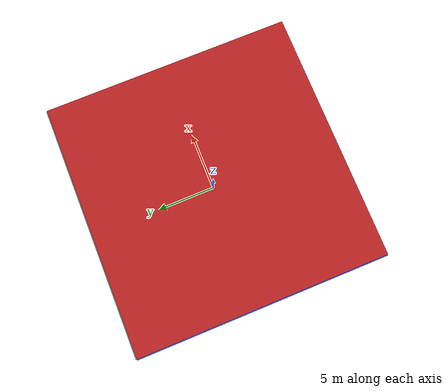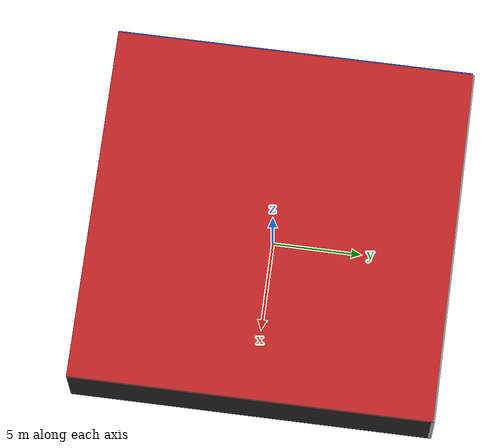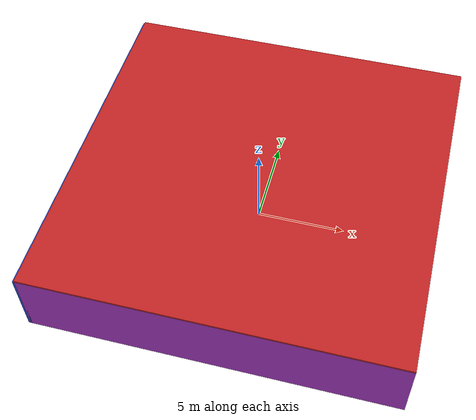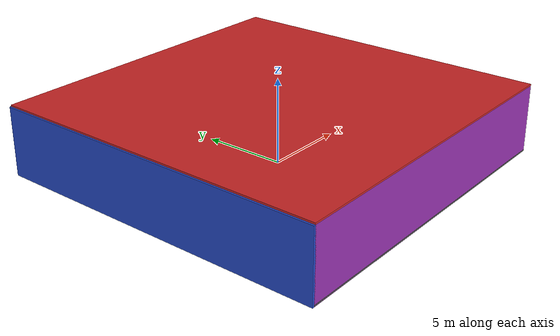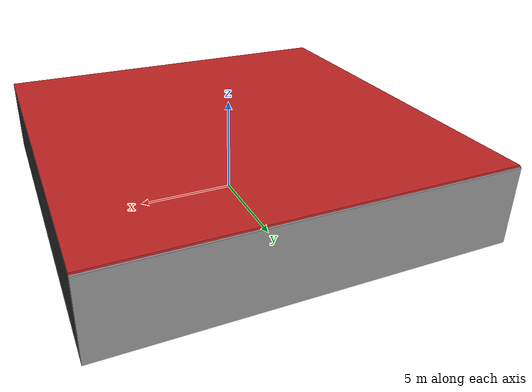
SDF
<sdf version="1.4">
 <world name="default">
  <physics type="ode">
   <max_step_size>0.001</max_step_size>
   <real_time_factor>1</real_time_factor>
   <real_time_update_rate>1000</real_time_update_rate>
   <gravity>0 0 -9.8</gravity>
  </physics>
  <scene><ambient>0.4 0.4 0.4 1</ambient><background>0.7 0.7 0.7 1</background><shadows>1</shadows></scene>
  <model name="Surrounding">
   <static>1</static>
   <link name="Ceiling">
    <collision name="Ceiling_Collision"><geometry><box><size>20 20 0.1</size></box></geometry></collision>
    <visual name="Ceiling_Visual">
     <geometry><box><size>20 20 0.1</size></box></geometry>
     <material>
      <script><uri>file://media/materials/scripts/gazebo.material</uri><name>Gazebo/RedBright</name></script>
     </material>
    </visual>
    <pose>0 0 4.05 0 0 0</pose>
   </link>
   <link name="Wall_South">
    <collision name="Wall_South_Collision">
     <geometry><box><size>20 0 4</size></box></geometry>
     <pose>0 0 2 0 -0 0</pose>
    </collision>
    <visual name="Wall_South_Visual">
     <pose>0 0 2 0 -0 0</pose>
     <geometry><box><size>20 0 4</size></box></geometry>
     <material>
      <script><uri>file://media/materials/scripts/gazebo.material</uri><name>Gazebo/PurpleGlow</name></script>
     </material>
    </visual>
    <velocity_decay><linear>0</linear><angular>0</angular></velocity_decay>
    <pose>0 -10 0 0 -0 0</pose>
   </link>
   <link name="Wall_East">
    <collision name="Wall_21_Collision">
     <geometry><box><size>20 0 4</size></box></geometry>
     <pose>0 0 2 0 -0 0</pose>
    </collision>
    <visual name="Wall_21_Visual">
     <pose>0 0 2 0 -0 0</pose>
     <geometry><box><size>20 0 4</size></box></geometry>
     <material>
      <script><uri>file://media/materials/scripts/gazebo.material</uri><name>Gazebo/FlatBlack</name></script>
     </material>
    </visual>
    <velocity_decay><linear>0</linear><angular>0</angular></velocity_decay>
    <pose>10 0 0 0 -0 1.5708</pose>
   </link>
   <link name="Wall_North">
    <collision name="Wall_22_Collision">
     <geometry><box><size>20 0.2 4</size></box></geometry>
     <pose>0 0 2 0 -0 0</pose>
    </collision>
    <visual name="Wall_22_Visual">
     <pose>0 0 2 0 -0 0</pose>
     <geometry><box><size>20 0.2 4</size></box></geometry>
     <material>
      <script><uri>file://media/materials/scripts/gazebo.material</uri><name>Gazebo/Grey</name></script>
     </material>
    </visual>
    <velocity_decay><linear>0</linear><angular>0</angular></velocity_decay>
    <pose>0 10 0 0 -0 0</pose>
   </link>
   <link name="Wall_West">
    <collision name="Wall_23_Collision">
     <geometry><box><size>20 0.2 4</size></box></geometry>
     <pose>0 0 2 0 -0 0</pose>
    </collision>
    <visual name="Wall_23_Visual">
     <pose>0 0 2 0 -0 0</pose>
     <geometry><box><size>20 0.2 4</size></box></geometry>
     <material>
      <script><uri>file://media/materials/scripts/gazebo.material</uri><name>Gazebo/BlueGlow</name></script>
     </material>
    </visual>
    <velocity_decay><linear>0</linear><angular>0</angular></velocity_decay>
    <pose>-10 0 0 0 0 -1.5708</pose>
   </link>
   <link name="Ground_link">
    <collision name="collision">
     <pose>0 0 .05 0 -0 0</pose>
     <geometry><box><size>20 20 0.1</size></box></geometry>
    </collision>
    <visual name="visual">
     <pose>0 0 .05 0 -0 0</pose>
     <geometry><box><size>20 20 0.1</size></box></geometry>
     <material>
      <script><uri>file://media/materials/scripts/gazebo.material</uri><name>Gazebo/Road</name></script>
     </material>
    </visual>
   </link>
   <static>1</static>
  </model>
  <spherical_coordinates>
   <surface_model>EARTH_WGS84</surface_model>
   <latitude_deg>0</latitude_deg>
   <longitude_deg>0</longitude_deg>
   <elevation>0</elevation>
   <heading_deg>0</heading_deg>
  </spherical_coordinates>
  <light name="lightball_0" type="diffuse">
   <diffuse>0.8 0.8 0.8 1</diffuse>
   <specular>0.2 0.2 0.2 1</specular>
   <attenuation>
    <range>100</range>
    <constant>0.7</constant>
    <linear>0.01</linear>
    <quadratic>0.001</quadratic>
   </attenuation>
   <direction>-0.5 0.1 -0.9</direction>
   <pose>6.79560905787 -8.48742281468 3.79523252433 0 0 0</pose>
  </light>
  <light name="lightball_1" type="diffuse">
   <diffuse>0.8 0.8 0.8 1</diffuse>
   <specular>0.2 0.2 0.2 1</specular>
   <attenuation>
    <range>100</range>
    <constant>0.7</constant>
    <linear>0.01</linear>
    <quadratic>0.001</quadratic>
   </attenuation>
   <direction>-0.5 0.1 -0.9</direction>
   <pose>3.7732711786 0.729863754662 2.588333635 0 0 0</pose>
  </light>
  <light name="lightball_2" type="diffuse">
   <diffuse>0.8 0.8 0.8 1</diffuse>
   <specular>0.2 0.2 0.2 1</specular>
   <attenuation>
    <range>100</range>
    <constant>0.7</constant>
    <linear>0.01</linear>
    <quadratic>0.001</quadratic>
   </attenuation>
   <direction>-0.5 0.1 -0.9</direction>
   <pose>-2.710946766 -0.580024001012 1.30832341921 0 0 0</pose>
  </light>
  <light name="lightball_3" type="diffuse">
   <diffuse>0.8 0.8 0.8 1</diffuse>
   <specular>0.2 0.2 0.2 1</specular>
   <attenuation>
    <range>100</range>
    <constant>0.7</constant>
    <linear>0.01</linear>
    <quadratic>0.001</quadratic>
   </attenuation>
   <direction>-0.5 0.1 -0.9</direction>
   <pose>6.18559519002 0.195162574449 0.903212151935 0 0 0</pose>
  </light>
  <light name="lightball_4" type="diffuse">
   <diffuse>0.8 0.8 0.8 1</diffuse>
   <specular>0.2 0.2 0.2 1</specular>
   <attenuation>
    <range>100</range>
    <constant>0.7</constant>
    <linear>0.01</linear>
    <quadratic>0.001</quadratic>
   </attenuation>
   <direction>-0.5 0.1 -0.9</direction>
   <pose>-1.68126036641 -6.52332758459 3.20277440841 0 0 0</pose>
  </light>
  <light name="lightball_5" type="diffuse">
   <diffuse>0.8 0.8 0.8 1</diffuse>
   <specular>0.2 0.2 0.2 1</specular>
   <attenuation>
    <range>100</range>
    <constant>0.7</constant>
    <linear>0.01</linear>
    <quadratic>0.001</quadratic>
   </attenuation>
   <direction>-0.5 0.1 -0.9</direction>
   <pose>-7.54152427947 -4.13015305436 3.30848023519 0 0 0</pose>
  </light>
  <light name="lightball_6" type="diffuse">
   <diffuse>0.8 0.8 0.8 1</diffuse>
   <specular>0.2 0.2 0.2 1</specular>
   <attenuation>
    <range>100</range>
    <constant>0.7</constant>
    <linear>0.01</linear>
    <quadratic>0.001</quadratic>
   </attenuation>
   <direction>-0.5 0.1 -0.9</direction>
   <pose>5.27142424318 -4.67327267864 0.612235383688 0 0 0</pose>
  </light>
  <include><uri>model://cabinet</uri><pose>-3.86155784982 -4.34671747817 0 0 0 1.46176198513</pose></include>
  <include><uri>model://cabinet</uri><pose>-4.32971804472 1.66071629583 0 0 0 1.27403593632</pose></include>
  <include><uri>model://cabinet</uri><pose>-1.67042236558 -0.516802422729 0 0 0 2.33345110039</pose></include>
  <include><uri>model://cabinet</uri><pose>4.64760162265 8.68450424535 0 0 0 2.60714138456</pose></include>
  <include><uri>model://table</uri><pose>8.32199356611 2.61466053016 0 0 0 0.649430063241</pose></include>
 </world>
</sdf>

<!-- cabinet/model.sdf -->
<sdf version="1.5">
  <model name="cabinet">
    <static>true</static>
    <link name="cabinet_bottom_plate">
      <inertial>
        <pose>0 0 -1 0 0 0</pose>
        <inertia>
          <ixx>2.050000</ixx>
          <ixy>0</ixy>
          <ixz>0</ixz>
          <iyy>2.050000</iyy>
          <iyz>0</iyz>
          <izz>2.050000</izz>
        </inertia>
        <mass>25.000000</mass>
      </inertial>
      <collision name="cabinet_bottom_plate_geom">
        <pose>0 0 0.010000 0 0 0</pose>
        <geometry>
          <box>
            <size>0.450000 0.450000 0.020000</size>
          </box>
        </geometry>
      </collision>
      <visual name="cabinet_bottom_plate_geom_visual">
        <pose>0 0 0.010000 0 0 0</pose>
        <geometry>
          <box>
            <size>0.450000 0.450000 0.020000</size>
          </box>
        </geometry>
        <material>
          <script>
            <uri>model://media/materials/scripts/gazebo.material</uri>
            <name>Gazebo/Wood</name>
          </script>
        </material>
      </visual>
      <collision name="cabinet_bottom_plate_geom_cabinet_back_plate">
        <pose>0.235000 0 0.510000 0 0 0</pose>
        <geometry>
          <box>
            <size>0.020000 0.450000 1.020000</size>
          </box>
        </geometry>
      </collision>
      <visual name="cabinet_bottom_plate_geom_cabinet_back_plate_visual">
        <pose>0.235000 0 0.510000 0 0 0</pose>
        <geometry>
          <box>
            <size>0.020000 0.450000 1.020000</size>
          </box>
        </geometry>
        <material>
          <script>
            <uri>model://media/materials/scripts/gazebo.material</uri>
            <name>Gazebo/Wood</name>
          </script>
        </material>
      </visual>
      <collision name="cabinet_bottom_plate_geom_cabinet_left_plate">
        <pose>0 0.235000 0.510000 0 0 0</pose>
        <geometry>
          <box>
            <size>0.450000 0.020000 1.020000</size>
          </box>
        </geometry>
      </collision>
      <visual name="cabinet_bottom_plate_geom_cabinet_left_plate_visual">
        <pose>0 0.235000 0.510000 0 0 0</pose>
        <geometry>
          <box>
            <size>0.450000 0.020000 1.020000</size>
          </box>
        </geometry>
        <material>
          <script>
            <uri>model://media/materials/scripts/gazebo.material</uri>
            <name>Gazebo/Wood</name>
          </script>
        </material>
      </visual>
      <collision name="cabinet_bottom_plate_geom_cabinet_middle_plate">
        <pose>0 0 0.510000 0 0 0</pose>
        <geometry>
          <box>
            <size>0.450000 0.450000 0.020000</size>
          </box>
        </geometry>
      </collision>
      <visual name="cabinet_bottom_plate_geom_cabinet_middle_plate_visual">
        <pose>0 0 0.510000 0 0 0</pose>
        <geometry>
          <box>
            <size>0.450000 0.450000 0.020000</size>
          </box>
        </geometry>
        <material>
          <script>
            <uri>model://media/materials/scripts/gazebo.material</uri>
            <name>Gazebo/Wood</name>
          </script>
        </material>
      </visual>
      <collision name="cabinet_bottom_plate_geom_cabinet_right_plate">
        <pose>0 -0.235000 0.510000 0 0 0</pose>
        <geometry>
          <box>
            <size>0.450000 0.020000 1.020000</size>
          </box>
        </geometry>
      </collision>
      <visual name="cabinet_bottom_plate_geom_cabinet_right_plate_visual">
        <pose>0 -0.235000 0.510000 0 0 0</pose>
        <geometry>
          <box>
            <size>0.450000 0.020000 1.020000</size>
          </box>
        </geometry>
        <material>
          <script>
            <uri>model://media/materials/scripts/gazebo.material</uri>
            <name>Gazebo/Wood</name>
          </script>
        </material>
      </visual>
      <collision name="cabinet_bottom_plate_geom_cabinet_top_plate">
        <pose>0 0 1.010000 0 0 0</pose>
        <geometry>
          <box>
            <size>0.450000 0.450000 0.020000</size>
          </box>
        </geometry>
      </collision>
      <visual name="cabinet_bottom_plate_geom_cabinet_top_plate_visual">
        <pose>0 0 1.010000 0 0 0</pose>
        <geometry>
          <box>
            <size>0.450000 0.450000 0.020000</size>
          </box>
        </geometry>
        <material>
          <script>
            <uri>model://media/materials/scripts/gazebo.material</uri>
            <name>Gazebo/Wood</name>
          </script>
        </material>
      </visual>
    </link>
  </model>
</sdf>

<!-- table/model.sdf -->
<sdf version="1.5">
  <model name="table">
    <static>true</static>
    <link name="link">
      <collision name="surface">
        <pose>0 0 1.0 0 0 0</pose>
        <geometry>
          <box>
            <size>1.5 0.8 0.03</size>
          </box>
        </geometry>
        <surface>
          <friction>
            <ode>
              <mu>0.6</mu>
              <mu2>0.6</mu2>
            </ode>
          </friction>
        </surface>
      </collision>
      <visual name="visual1">
        <pose>0 0 1.0 0 0 0</pose>
        <geometry>
          <box>
            <size>1.5 0.8 0.03</size>
          </box>
        </geometry>
        <material>
          <script>
            <uri>model://media/materials/scripts/gazebo.material</uri>
            <name>Gazebo/Wood</name>
          </script>
        </material>
      </visual>
      <collision name="front_left_leg">
        <pose>0.68 0.38 0.5 0 0 0</pose>
        <geometry>
          <cylinder>
            <radius>0.02</radius>
            <length>1.0</length>
          </cylinder>
        </geometry>
      </collision>
      <visual name="front_left_leg">
        <pose>0.68 0.38 0.5 0 0 0</pose>
        <geometry>
          <cylinder>
            <radius>0.02</radius>
            <length>1.0</length>
          </cylinder>
        </geometry>
        <material>
          <script>
            <uri>model://media/materials/scripts/gazebo.material</uri>
            <name>Gazebo/Grey</name>
          </script>
        </material>
      </visual>
      <collision name="front_right_leg">
        <pose>0.68 -0.38 0.5 0 0 0</pose>
        <geometry>
          <cylinder>
            <radius>0.02</radius>
            <length>1.0</length>
          </cylinder>
        </geometry>
      </collision>
      <visual name="front_right_leg">
        <pose>0.68 -0.38 0.5 0 0 0</pose>
        <geometry>
          <cylinder>
            <radius>0.02</radius>
            <length>1.0</length>
          </cylinder>
        </geometry>
        <material>
          <script>
            <uri>model://media/materials/scripts/gazebo.material</uri>
            <name>Gazebo/Grey</name>
          </script>
        </material>
      </visual>
      <collision name="back_right_leg">
        <pose>-0.68 -0.38 0.5 0 0 0</pose>
        <geometry>
          <cylinder>
            <radius>0.02</radius>
            <length>1.0</length>
          </cylinder>
        </geometry>
      </collision>
      <visual name="back_right_leg">
        <pose>-0.68 -0.38 0.5 0 0 0</pose>
        <geometry>
          <cylinder>
            <radius>0.02</radius>
            <length>1.0</length>
          </cylinder>
        </geometry>
        <material>
          <script>
            <uri>model://media/materials/scripts/gazebo.material</uri>
            <name>Gazebo/Grey</name>
          </script>
        </material>
      </visual>
      <collision name="back_left_leg">
        <pose>-0.68 0.38 0.5 0 0 0</pose>
        <geometry>
          <cylinder>
            <radius>0.02</radius>
            <length>1.0</length>
          </cylinder>
        </geometry>
      </collision>
      <visual name="back_left_leg">
        <pose>-0.68 0.38 0.5 0 0 0</pose>
        <geometry>
          <cylinder>
            <radius>0.02</radius>
            <length>1.0</length>
          </cylinder>
        </geometry>
        <material>
          <script>
            <uri>model://media/materials/scripts/gazebo.material</uri>
            <name>Gazebo/Grey</name>
          </script>
        </material>
      </visual>
    </link>
  </model>
</sdf>
